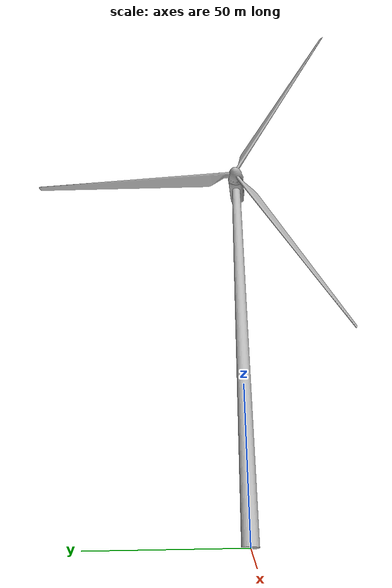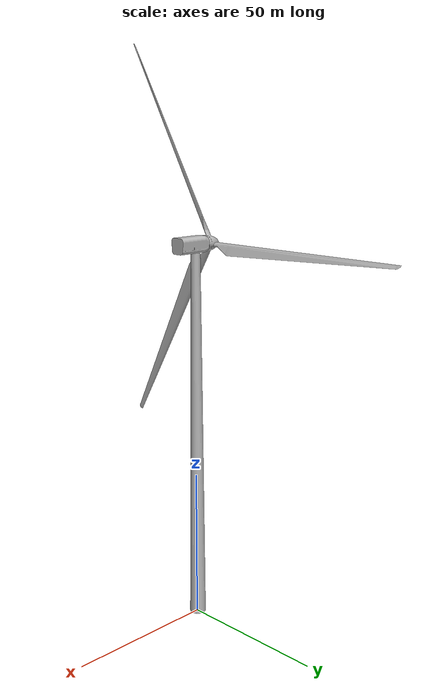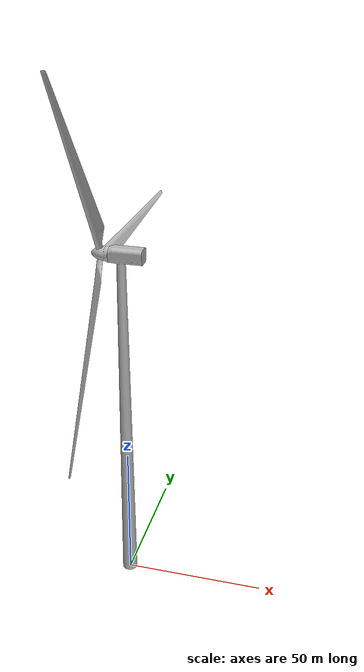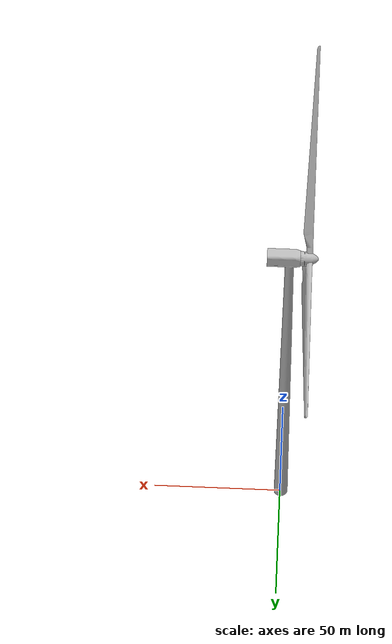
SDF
<?xml version="1.0" ?>
<sdf version="1.6">
  <model name="vestas_v136_rotation">
    <static>true</static>
    <!-- Base tower -->
    <link name="base_link">
      <pose>0 0 0 0 0 0</pose>
      <collision name="tower_collision">
        <pose>0 0 0 0 0 0</pose>
        <geometry>
          <mesh>
            <uri>model://vestas_v136_rotation/meshes/vestas_v136_tower.dae</uri>
          </mesh>
        </geometry>
      </collision>
      <visual name="tower_visual">
        <geometry>
          <mesh>
            <uri>model://vestas_v136_rotation/meshes/vestas_v136_tower.dae</uri>
	         </mesh>
        </geometry>
     </visual>
    </link>

    <!-- Wings -->
    <link name='wings'>
      <!-- Change wing rotation here as rotation around x-axis. NOTE: +pi/2 compared to v52 -->
      <pose>-7.17986 -0.07363 127.91975 2.094 0 0</pose>
      <collision name="wings_collision">
        <pose>0 0 0 0 0 0</pose>
        <geometry>
          <mesh>
            <uri>model://vestas_v136_rotation/meshes/vestas_v136_wings.dae</uri>
          </mesh>
        </geometry>
      </collision>
      <visual name="wings_visual">
        <geometry>
          <mesh>
            <uri>model://vestas_v136_rotation/meshes/vestas_v136_wings.dae</uri>
	         </mesh>
        </geometry>
     </visual>
    </link>
    <joint name='wings_joint' type='revolute'>
      <child>wings</child>
      <parent>base_link</parent>
      <axis>
        <xyz>1 0 0</xyz>
        <limit>
          <lower>0</lower>
          <upper>0</upper>
          <effort>0</effort>
          <velocity>0</velocity>
        </limit>
        <dynamics>
          <spring_reference>0</spring_reference>
          <spring_stiffness>0</spring_stiffness>
        </dynamics>
        <use_parent_model_frame>1</use_parent_model_frame>
      </axis>
    </joint>
  </model>
</sdf>
